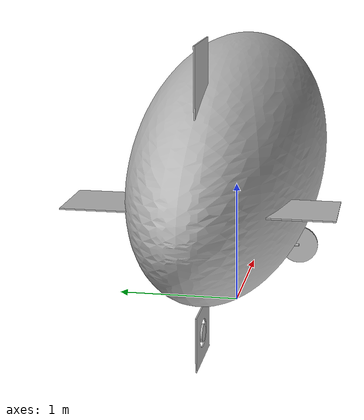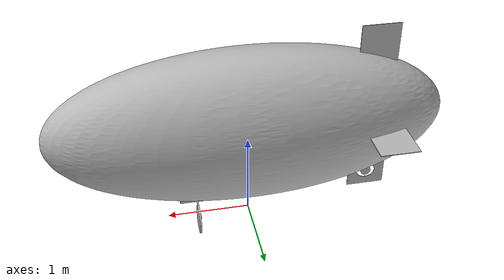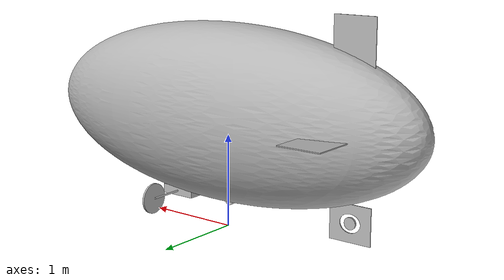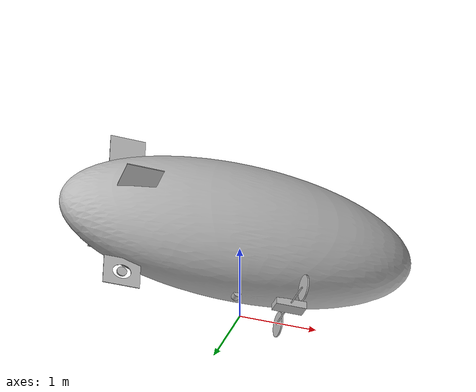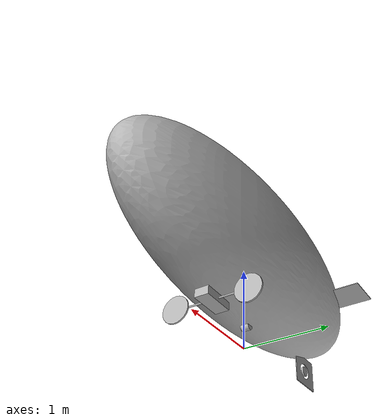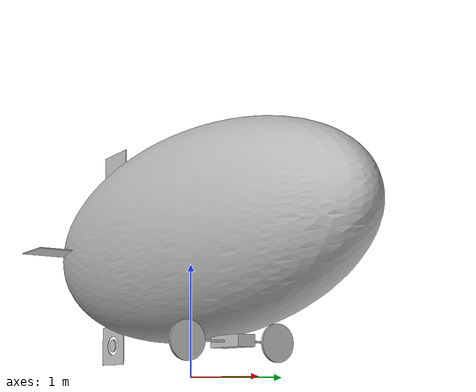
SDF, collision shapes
<?xml version="1.0" ?>
<!-- DO NOT EDIT: Generated from cloudship.sdf.jinja -->
<sdf version="1.5">

  <model name="cloudship">

    <self_collide>false</self_collide>
    <static>false</static>

    <link name="hull">
      <pose>0 0 1.25 0 0 0</pose>
      <inertial>
        <pose>0.20460772768687027 0 -0.6249821307201272 0 0 0</pose>
        <mass>8.065555581192736</mass>
        <inertia>
          <ixx>2.8015466924068972</ixx>
          <iyy>6.095429361688362</iyy>
          <izz>8.802036122021091</izz>
        </inertia>
      </inertial>

      <gravity>true</gravity>
      <self_collide>false</self_collide>
      <velocity_decay/>

      <visual name="hull_visual">
        <geometry>
          <mesh>
            <scale>2.35 0.7 0.95</scale>
            <uri>model://cloudship/meshes/ellipsoid.stl</uri>
          </mesh>
        </geometry>
      </visual>

      <collision name="hull_collision">
        <pose>0 0 0 0 0 0</pose>
        <geometry>
          <mesh>
            <scale>2.35 0.7 0.95</scale>
            <uri>model://cloudship/meshes/ellipsoid.stl</uri>
          </mesh>
        </geometry>
      </collision>

      <visual name="gondola_visual">
        <pose>0.65 0 -0.9129370469025024 0 0 0</pose>
        <geometry>
          <box>
            <size>0.4 0.17 0.2</size>
          </box>
        </geometry>
      </visual>

      <collision name="gondola_collision">
        <pose>0.65 0 -0.9629370469025025 0 0 0</pose>
        <geometry>
          <box>
            <size>0.4 0.17 0.1</size>
          </box>
        </geometry>
      </collision>

      <visual name="payload_visual">
      <pose>-0.05 0 -0.9497849462338037 1.5707963267948966 0 0</pose>
        <geometry>
          <cylinder>
            <radius>0.05</radius>
            <length>0.1</length>
          </cylinder>
        </geometry>
      </visual>

      <collision name="payload_collision">
      <pose>-0.05 0 -0.9497849462338037 1.5707963267948966 0 0</pose>
        <geometry>
          <cylinder>
            <radius>0.05</radius>
            <length>0.1</length>
          </cylinder>
        </geometry>
      </collision>

      <visual name="fin_top_visual">
  <pose>-1.5174999999999998 0 0.7253757377767631 0 0 0</pose>
  <geometry>
          <box>
            <size>0.465 0.01 0.78</size>
          </box>
        </geometry>
</visual>

<collision name="fin_top_collision">
  <pose>-1.5174999999999998 0 0.7253757377767631 0 0 0</pose>
  <geometry>
          <box>
            <size>0.465 0.01 0.78</size>
          </box>
        </geometry>
</collision>
      <visual name="fin_port_visual">
  <pose>-1.5174999999999998 0.5344873857302466 0 -1.5707963267948966 0 0</pose>
  <geometry>
          <box>
            <size>0.465 0.01 0.78</size>
          </box>
        </geometry>
</visual>

<collision name="fin_port_collision">
  <pose>-1.5174999999999998 0.5344873857302466 0 -1.5707963267948966 0 0</pose>
  <geometry>
          <box>
            <size>0.465 0.01 0.78</size>
          </box>
        </geometry>
</collision>
      <visual name="fin_sb_visual">
  <pose>-1.5174999999999998 -0.5344873857302466 0 1.5707963267948966 0 0</pose>
  <geometry>
          <box>
            <size>0.465 0.01 0.78</size>
          </box>
        </geometry>
</visual>

<collision name="fin_sb_collision">
  <pose>-1.5174999999999998 -0.5344873857302466 0 1.5707963267948966 0 0</pose>
  <geometry>
          <box>
            <size>0.465 0.01 0.78</size>
          </box>
        </geometry>
</collision>

      <visual name="fin_bottom_rotor_visual">
        <pose>-1.5174999999999998 0 -1.1153757377767632 0 0 0</pose>
        <geometry>
          <mesh>
            <scale>0.465 0.01 0.39</scale>
            <uri>model://cloudship/meshes/fin_prop.stl</uri>
          </mesh>
        </geometry>
      </visual>
      <visual name="fin_bottom_plate_visual">
        <pose>-1.5174999999999998 0 -0.5303757377767632 0 0 0</pose>
        <geometry>
          <box>
            <size>0.465 0.01 0.39</size>
          </box>
        </geometry>
      </visual>

      <collision name="fin_bottom_collision">
        <pose>-1.5174999999999998 0 -1.1153757377767632 0 0 0</pose>
        <geometry>
          <mesh>
            <scale>0.465 0.01 0.39</scale>
            <uri>model://cloudship/meshes/fin_prop.stl</uri>
          </mesh>
        </geometry>
      </collision>
    </link>

    <link name="stabilator">
      <pose>0.65 0 0.2870629530974975 0 0 0</pose><inertial>
        <mass>0.5</mass>
        <inertia>
          <ixx>0.0337625</ixx>
          <iyy>2.5e-05</iyy>
          <izz>0.0337625</izz>
        </inertia>
      </inertial>

      <gravity>false</gravity>
      <self_collide>false</self_collide>
      <velocity_decay/>

      <visual name="stabilator_visual">
        <pose>0 0 0 1.5707963267948966 0 0</pose>
        <geometry>
          <cylinder>
            <radius>0.01</radius>
            <length>0.9</length>
          </cylinder>
        </geometry>
      </visual>
      <visual name="port_prop_gaurd_visual">
        <pose>0.02 0.45 0 0 1.5707963267948966 0</pose>
        <geometry>
          <mesh>
            <scale>0.18161000000000002 0.18161000000000002 0.02</scale>
            <uri>model://cloudship/meshes/prop_gaurd.stl</uri>
          </mesh>
        </geometry>
      </visual>
      <visual name="sb_prop_gaurd_visual">
        <pose>0.02 -0.45 0 0 1.5707963267948966 0</pose>
        <geometry>
          <mesh>
            <scale>0.18161000000000002 0.18161000000000002 0.02</scale>
            <uri>model://cloudship/meshes/prop_gaurd.stl</uri>
          </mesh>
        </geometry>
      </visual>

      <collision name="stabilator_port_collision">
        <pose>0 0.2675 0 1.5707963267948966 0 0</pose>
        <geometry>
          <cylinder>
            <radius>0.01</radius>
            <length>0.365</length>
          </cylinder>
        </geometry>
      </collision>
      <collision name="stabilator_sb_collision">
        <pose>0 -0.2675 0 1.5707963267948966 0 0</pose>
        <geometry>
          <cylinder>
            <radius>0.01</radius>
            <length>0.365</length>
          </cylinder>
        </geometry>
      </collision>
    </link>

    <joint name='stabilator_joint' type='revolute'>
      <parent>hull</parent>
      <child>stabilator</child>
      <axis>
        <xyz>0 1 0</xyz>
        <limit>
          <lower>-3.141592653589793</lower>
          <upper>3.141592653589793</upper>
        </limit>
        <dynamics>
          <damping>0.1</damping>
        </dynamics>
      </axis>
      <physics>
        <ode>
          <implicit_spring_damper>1</implicit_spring_damper>
        </ode>
      </physics>
    </joint>

    <link name="rotor_1">
  <pose>0.67 0.45 0.2820629530974975 0 1.5707963267948966 0</pose>
  <inertial>
        <mass>0.0025</mass>
        <inertia>
          <ixx>1.0000000000000002e-06</ixx>
          <iyy>2.2798341666666663e-05</iyy>
          <izz>2.2798341666666663e-05</izz>
        </inertia>
      </inertial>

  <gravity>false</gravity>
  <self_collide>false</self_collide>
  <velocity_decay/>

  <visual name="rotor_1_visual">
    <geometry>
      <mesh>
        <scale>1.2842752129438761 1.2842752129438761 2.0855057351407718</scale>
        <uri>model://cloudship/meshes/prop_ccw.dae</uri>
      </mesh>
    </geometry>
  </visual>

  <collision name="rotor_1_collision">
    <geometry>
      <cylinder>
        <length>0.02</length>
        <radius>0.1651</radius>
      </cylinder>
    </geometry>
  </collision>
</link>

<joint name='rotor_1_joint' type='revolute'>
  <child>rotor_1</child>
  <parent>stabilator</parent>
  <axis>
    <xyz>0 0 1</xyz>
    <limit>
      <lower>-1e+16</lower>
      <upper>1e+16</upper>
    </limit>
    <dynamics>
      <spring_reference>0</spring_reference>
      <spring_stiffness>0</spring_stiffness>
    </dynamics>
  </axis>
</joint>

<plugin name='rotor_1_model' filename='libgazebo_motor_model.so'>
  <robotNamespace/>
  <jointName>rotor_1_joint</jointName>
  <linkName>rotor_1</linkName>
  <turningDirection>ccw</turningDirection>
  <timeConstantUp>0.05</timeConstantUp>
  <timeConstantDown>0.05</timeConstantDown>
  <maxRotVelocity>1500</maxRotVelocity>
  <motorConstant>7.063200000000001e-06</motorConstant>
  <momentConstant>0</momentConstant>
  <rotorDragCoefficient>0.000806428</rotorDragCoefficient>
  <rollingMomentCoefficient>1e-06</rollingMomentCoefficient>
  <commandSubTopic>/gazebo/command/motor_speed</commandSubTopic>
  <motorNumber>1</motorNumber>
  <motorSpeedPubTopic>/motor_speed/1</motorSpeedPubTopic>
  <rotorVelocitySlowdownSim>10</rotorVelocitySlowdownSim>
</plugin>
    <link name="rotor_2">
  <pose>0.67 -0.45 0.2870629530974975 0 1.5707963267948966 0</pose>
  <inertial>
        <mass>0.0025</mass>
        <inertia>
          <ixx>1.0000000000000002e-06</ixx>
          <iyy>2.2798341666666663e-05</iyy>
          <izz>2.2798341666666663e-05</izz>
        </inertia>
      </inertial>

  <gravity>false</gravity>
  <self_collide>false</self_collide>
  <velocity_decay/>

  <visual name="rotor_2_visual">
    <geometry>
      <mesh>
        <scale>1.2842752129438761 1.2842752129438761 2.0855057351407718</scale>
        <uri>model://cloudship/meshes/prop_cw.dae</uri>
      </mesh>
    </geometry>
  </visual>

  <collision name="rotor_2_collision">
    <geometry>
      <cylinder>
        <length>0.02</length>
        <radius>0.1651</radius>
      </cylinder>
    </geometry>
  </collision>
</link>

<joint name='rotor_2_joint' type='revolute'>
  <child>rotor_2</child>
  <parent>stabilator</parent>
  <axis>
    <xyz>0 0 1</xyz>
    <limit>
      <lower>-1e+16</lower>
      <upper>1e+16</upper>
    </limit>
    <dynamics>
      <spring_reference>0</spring_reference>
      <spring_stiffness>0</spring_stiffness>
    </dynamics>
  </axis>
</joint>

<plugin name='rotor_2_model' filename='libgazebo_motor_model.so'>
  <robotNamespace/>
  <jointName>rotor_2_joint</jointName>
  <linkName>rotor_2</linkName>
  <turningDirection>cw</turningDirection>
  <timeConstantUp>0.05</timeConstantUp>
  <timeConstantDown>0.05</timeConstantDown>
  <maxRotVelocity>1500</maxRotVelocity>
  <motorConstant>7.063200000000001e-06</motorConstant>
  <momentConstant>0</momentConstant>
  <rotorDragCoefficient>0.000806428</rotorDragCoefficient>
  <rollingMomentCoefficient>1e-06</rollingMomentCoefficient>
  <commandSubTopic>/gazebo/command/motor_speed</commandSubTopic>
  <motorNumber>2</motorNumber>
  <motorSpeedPubTopic>/motor_speed/2</motorSpeedPubTopic>
  <rotorVelocitySlowdownSim>10</rotorVelocitySlowdownSim>
</plugin>
    <link name="rotor_3">
  <pose>-1.5174999999999998 0 0.3296242622232368 1.5707963267948966 0 0</pose>
  <inertial>
        <mass>0.0015</mass>
        <inertia>
          <ixx>6.000000000000001e-07</ixx>
          <iyy>2.0661250000000005e-06</iyy>
          <izz>2.0661250000000005e-06</izz>
        </inertia>
      </inertial>

  <gravity>false</gravity>
  <self_collide>false</self_collide>
  <velocity_decay/>

  <visual name="rotor_3_visual">
    <geometry>
      <mesh>
        <scale>0.4939520049784139 0.4939520049784139 2.0855057351407718</scale>
        <uri>model://cloudship/meshes/prop_cw.dae</uri>
      </mesh>
    </geometry>
  </visual>

  <collision name="rotor_3_collision">
    <geometry>
      <cylinder>
        <length>0.02</length>
        <radius>0.0635</radius>
      </cylinder>
    </geometry>
  </collision>
</link>

<joint name='rotor_3_joint' type='revolute'>
  <child>rotor_3</child>
  <parent>hull</parent>
  <axis>
    <xyz>0 0 1</xyz>
    <limit>
      <lower>-1e+16</lower>
      <upper>1e+16</upper>
    </limit>
    <dynamics>
      <spring_reference>0</spring_reference>
      <spring_stiffness>0</spring_stiffness>
    </dynamics>
  </axis>
</joint>

<plugin name='rotor_3_model' filename='libgazebo_motor_model.so'>
  <robotNamespace/>
  <jointName>rotor_3_joint</jointName>
  <linkName>rotor_3</linkName>
  <turningDirection>cw</turningDirection>
  <timeConstantUp>0.025</timeConstantUp>
  <timeConstantDown>0.025</timeConstantDown>
  <maxRotVelocity>1500</maxRotVelocity>
  <motorConstant>8.720000000000001e-07</motorConstant>
  <momentConstant>0</momentConstant>
  <rotorDragCoefficient>0.000806428</rotorDragCoefficient>
  <rollingMomentCoefficient>1e-06</rollingMomentCoefficient>
  <commandSubTopic>/gazebo/command/motor_speed</commandSubTopic>
  <motorNumber>3</motorNumber>
  <motorSpeedPubTopic>/motor_speed/3</motorSpeedPubTopic>
  <rotorVelocitySlowdownSim>10</rotorVelocitySlowdownSim>
</plugin>

    <plugin name='buoyancy' filename='libgazebo_buoyancy_plugin.so'>
      <robotNamespace/>
      <linkName>hull</linkName>
      <linkVolume>6.546031892529931</linkVolume>
      <fluidDensity>1.225</fluidDensity>
    </plugin>

    <plugin name='aerodynamics' filename='libgazebo_lta_aerodynamics_plugin.so'>
      <robotNamespace/>
      <linkName>hull</linkName>
      <air_density>1.225</air_density>
      <length>4.7</length>
      <diameter>1.9</diameter>
      <m11>1.2028333602523749</m11>
      <m22>6.531829367371614</m22>
      <m26>0.4204930192349329</m26>
      <m33>6.531829367371614</m33>
      <m35>-0.4204930192349329</m35>
      <m44>0.05055269814975098</m44>
      <m53>-0.4204930192349329</m53>
      <m55>1.581060532654893</m55>
      <m62>0.4204930192349329</m62>
      <m66>1.581060532654893</m66>
      <cx1>0.02</cx1>
      <cx2>0.02</cx2>
      <cx3>0.02</cx3>
      <cy1>0.02</cy1>
      <cy2>0.02</cy2>
      <cy3>0.02</cy3>
      <cz1>0.02</cz1>
      <cz2>0.02</cz2>
      <cz3>0.02</cz3>
      <cl2>0.02</cl2>
      <cl3>0.0002</cl3>
      <cl4>0.0002</cl4>
      <cm1>0.02</cm1>
      <cm2>0.02</cm2>
      <cm3>0.02</cm3>
      <cm5>0.002</cm5>
      <cn1>0.02</cn1>
      <cn2>0.02</cn2>
      <cn3>0.02</cn3>
      <cn5>0.002</cn5>
    </plugin>

    <plugin name='gazebo_imu_plugin' filename='libgazebo_imu_plugin.so'>
      <robotNamespace/>
      <linkName>hull</linkName>
      <imuTopic>/imu</imuTopic>
      <gyroscopeNoiseDensity>0.0003394</gyroscopeNoiseDensity>
      <gyroscopeRandomWalk>3.8785e-05</gyroscopeRandomWalk>
      <gyroscopeBiasCorrelationTime>1000.0</gyroscopeBiasCorrelationTime>
      <gyroscopeTurnOnBiasSigma>0.0087</gyroscopeTurnOnBiasSigma>
      <accelerometerNoiseDensity>0.004</accelerometerNoiseDensity>
      <accelerometerRandomWalk>0.006</accelerometerRandomWalk>
      <accelerometerBiasCorrelationTime>300.0</accelerometerBiasCorrelationTime>
      <accelerometerTurnOnBiasSigma>0.196</accelerometerTurnOnBiasSigma>
    </plugin>

    <plugin name='gps_plugin' filename='libgazebo_gps_plugin.so'>
      <robotNamespace/>
      <gpsNoise>true</gpsNoise>
    </plugin>

    <plugin name='magnetometer_plugin' filename='libgazebo_magnetometer_plugin.so'>
      <robotNamespace/>
      <pubRate>20</pubRate>
      <noiseDensity>0.0004</noiseDensity>
      <randomWalk>6.4e-06</randomWalk>
      <biasCorrelationTime>600</biasCorrelationTime>
      <magTopic>/mag</magTopic>
    </plugin>

    <plugin name='barometer_plugin' filename='libgazebo_barometer_plugin.so'>
      <robotNamespace/>
      <pubRate>10</pubRate>
      <baroTopic>/baro</baroTopic>
    </plugin>

    <plugin name='mavlink_interface' filename='libgazebo_mavlink_interface.so'>
      <robotNamespace/>
      <imuSubTopic>/imu</imuSubTopic>
      <gpsSubTopic>/gps</gpsSubTopic>
      <magSubTopic>/mag</magSubTopic>
      <baroSubTopic>/baro</baroSubTopic>

      <mavlink_addr>INADDR_ANY</mavlink_addr>
      <mavlink_udp_port>14560</mavlink_udp_port>
      <mavlink_tcp_port>4560</mavlink_tcp_port>
      <serialEnabled>false</serialEnabled>
      <serialDevice>/dev/ttyACM0</serialDevice>
      <baudRate>921600</baudRate>
      <qgc_addr>INADDR_ANY</qgc_addr>
      <qgc_udp_port>14550</qgc_udp_port>

      <hil_mode>false</hil_mode>
      <hil_state_level>false</hil_state_level>
      <enable_lockstep>true</enable_lockstep>
      <use_tcp>true</use_tcp>

      <vehicle_is_tailsitter>false</vehicle_is_tailsitter>
      <send_vision_estimation>true</send_vision_estimation>
      <send_odometry>false</send_odometry>

      <control_channels>
        <channel name="stabilator">
          <input_index>0</input_index>
          <input_offset>-0.5</input_offset>
          <input_scaling>-3.141592653589793</input_scaling>
          <zero_position_disarmed>0</zero_position_disarmed>
          <zero_position_armed>0</zero_position_armed>
          <joint_control_type>position</joint_control_type>
          <joint_control_pid>
            <p>80</p>
            <i>0</i>
            <d>0</d>
            <iMax>0.0</iMax>
            <iMin>0.0</iMin>
            <cmdMax>1.5707963267948966</cmdMax>
            <cmdMin>-1.5707963267948966</cmdMin>
          </joint_control_pid>
          <joint_name>stabilator_joint</joint_name>
        </channel>
        <channel name='rotor_1'>
          <input_index>1</input_index>
          <input_offset>0</input_offset>
          <input_scaling>1500</input_scaling>
          <zero_position_disarmed>0</zero_position_disarmed>
          <zero_position_armed>0</zero_position_armed>
          <joint_control_type>velocity</joint_control_type>
          <joint_name>rotor_1_joint</joint_name>
        </channel>
        <channel name='rotor_2'>
          <input_index>2</input_index>
          <input_offset>0</input_offset>
          <input_scaling>1500</input_scaling>
          <zero_position_disarmed>0</zero_position_disarmed>
          <zero_position_armed>0</zero_position_armed>
          <joint_control_type>velocity</joint_control_type>
          <joint_name>rotor_2_joint</joint_name>
        </channel>
        <channel name='rotor_3'>
          <input_index>3</input_index>
          <input_offset>-0.5</input_offset>
          <input_scaling>-3000</input_scaling>
          <zero_position_disarmed>0</zero_position_disarmed>
          <zero_position_armed>0</zero_position_armed>
          <joint_control_type>velocity</joint_control_type>
          <joint_name>rotor_3_joint</joint_name>
        </channel>
      </control_channels>
    </plugin>

  </model>

</sdf>

<!-- vim: set et ft=xml fenc=utf-8 ff=unix sts=0 sw=2 ts=2 : -->
